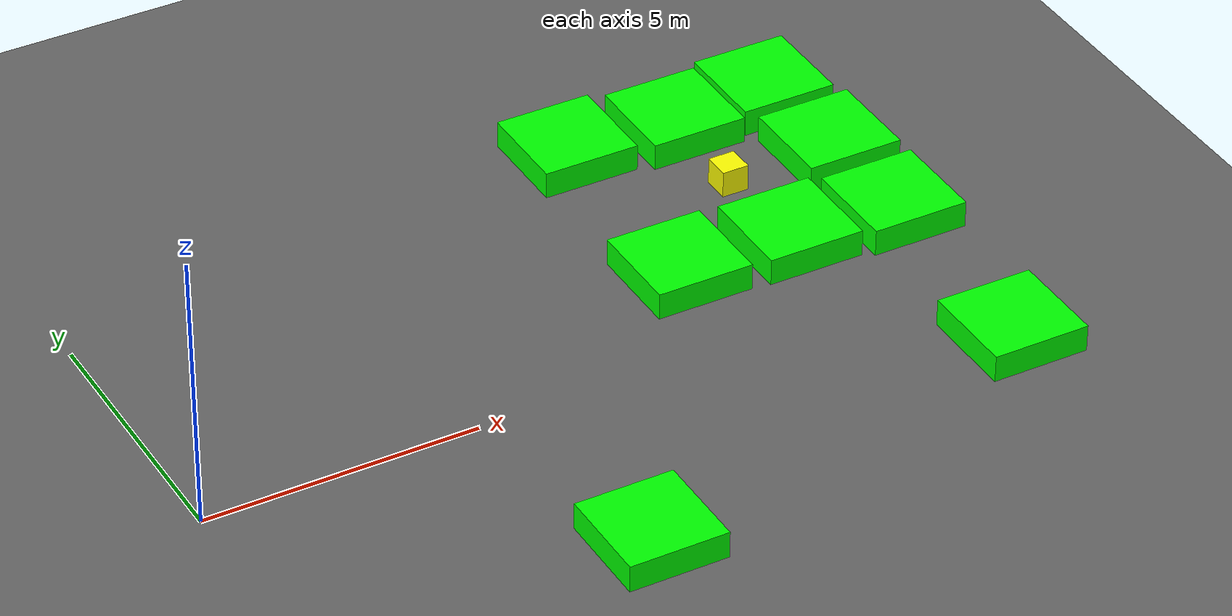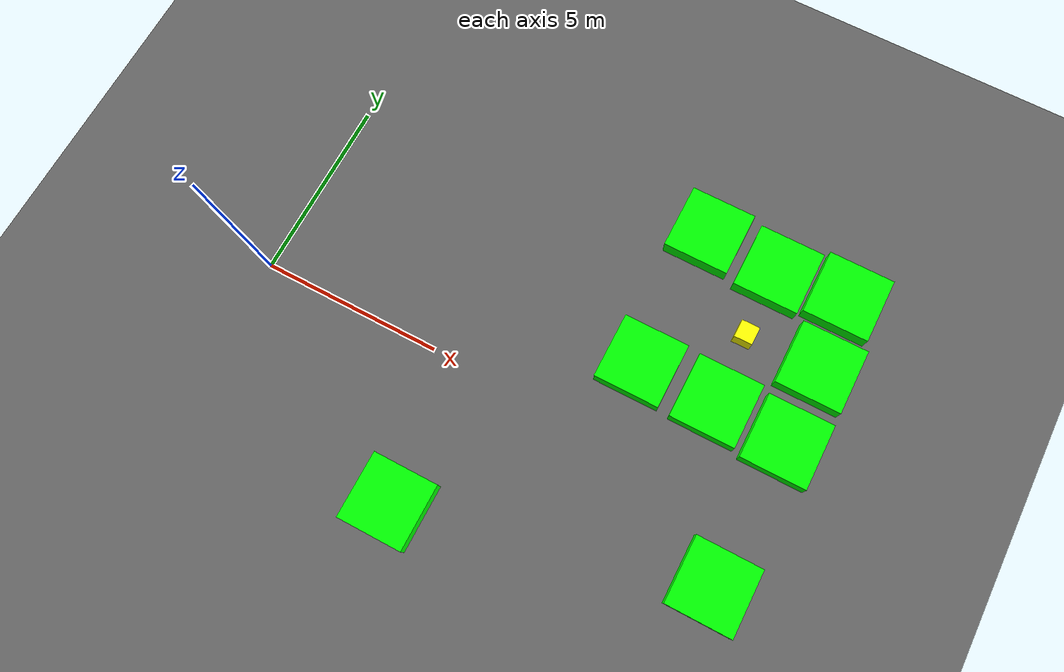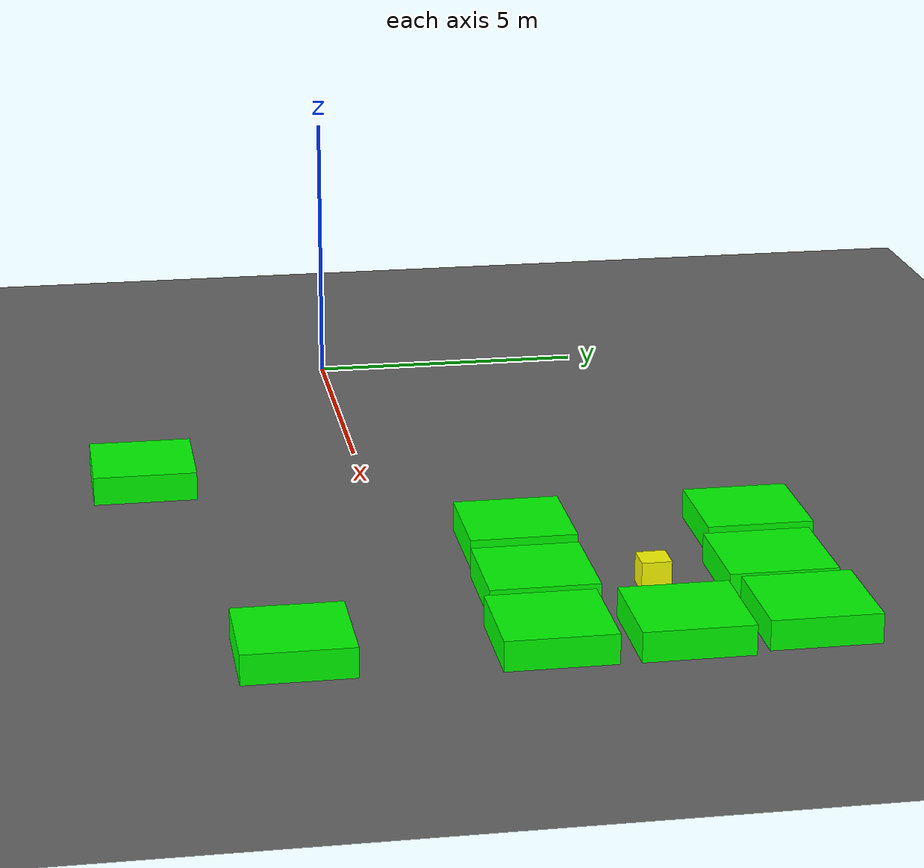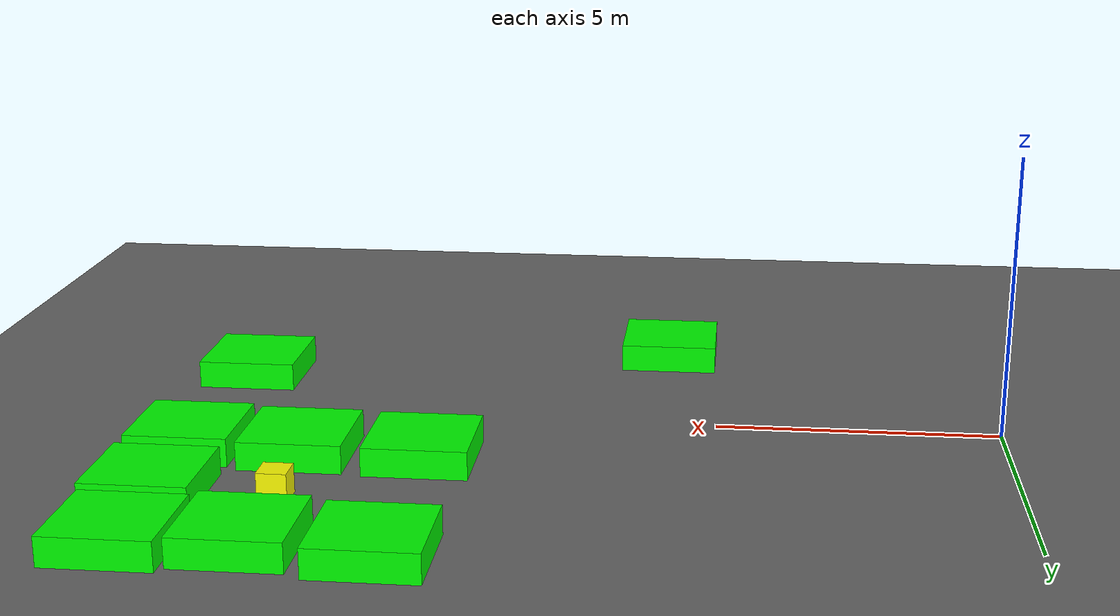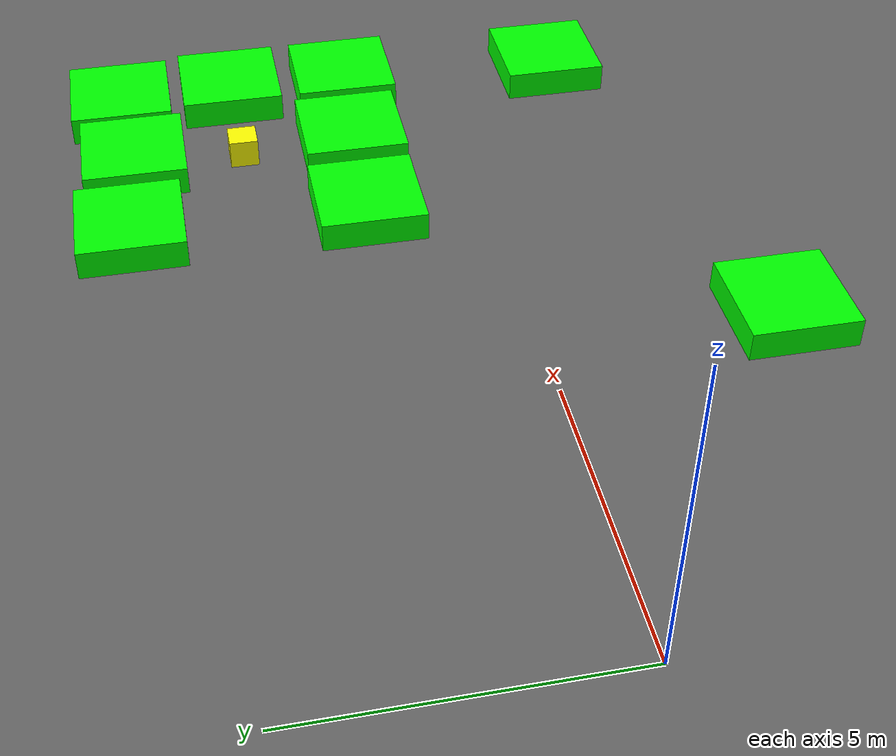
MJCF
<mujoco model="lvl5_deadend_obs10_dmid_depth2_seed41">
    <compiler angle="degree" coordinate="local" inertiafromgeom="true"/>
    <option integrator="RK4" timestep="0.01"/>

    <asset>
        <texture builtin="gradient" height="100" rgb1="0.6 0.8 1" rgb2="0 0 0" type="skybox" width="100"/>
        <texture name="floor_texture" type="2d" builtin="checker" width="100" height="100" rgb1="0 0 0" rgb2="0.8 0.8 0.8"/>
        <material name="MatPlane" reflectance="0.5" shininess="1" specular="1" texrepeat="10 10" texture="floor_texture"/>
    </asset>

    <!-- Excluding the contact between the agent and the goal, and the agent and the floor -->
    <contact>
        <exclude body1="agent" body2="goal"/>
        <exclude body1 = "agent" body2 = "floor"/>
    </contact>

    <extension>
        <plugin plugin = "mujoco.pid">
            <instance name = "pid1">
                <config key="kp" value="2"/>
                <config key="ki" value="0"/>
                <config key="kd" value="55"/>
            </instance>
        </plugin>
    </extension>

    <worldbody>
        <light cutoff="100" diffuse="1 1 1" dir="-0 0 -1.3" directional="true" exponent="1" pos="0 0 1.3" specular=".1 .1 .1"/>
        <body name="floor" pos="0 0 0">
            <geom name="floor_geom" type="plane" size="20 20 0.1" material="MatPlane"/>
        </body>

                <body name="goal" pos="0.0000 0.0000 0">
            <geom name="goal_geom" type="plane" size="0.5 0.5 1" pos="0 0 0" rgba="1 0 0 1"/>
        </body>

                <body name="agent" pos="12.0000 4.0000 0.250">
            <joint name="j1" type="slide" axis ="1 0 0 "/>
            <joint name="j2" type="slide" axis ="0 1 0 "/>
            <geom name="agent_geom" type="box" size="0.25 0.25 0.250" rgba="1 1 0 1"/>
        </body>

        <body name="obstacle1" pos="9.9672 6.0921 0.250">  <geom name="obstacle1_geom" type="box" size="0.9000 0.9000 0.250" rgba="0 1 0 1"/></body>
        <body name="obstacle2" pos="12.0323 5.9359 0.250">  <geom name="obstacle2_geom" type="box" size="0.9000 0.9000 0.250" rgba="0 1 0 1"/></body>
        <body name="obstacle3" pos="13.9332 6.0887 0.250">  <geom name="obstacle3_geom" type="box" size="0.9000 0.9000 0.250" rgba="0 1 0 1"/></body>
        <body name="obstacle4" pos="14.0599 4.0479 0.250">  <geom name="obstacle4_geom" type="box" size="0.9000 0.9000 0.250" rgba="0 1 0 1"/></body>
        <body name="obstacle5" pos="9.9357 2.0910 0.250">  <geom name="obstacle5_geom" type="box" size="0.9000 0.9000 0.250" rgba="0 1 0 1"/></body>
        <body name="obstacle6" pos="12.0688 2.0375 0.250">  <geom name="obstacle6_geom" type="box" size="0.9000 0.9000 0.250" rgba="0 1 0 1"/></body>
        <body name="obstacle7" pos="14.0567 1.9124 0.250">  <geom name="obstacle7_geom" type="box" size="0.9000 0.9000 0.250" rgba="0 1 0 1"/></body>
        <body name="obstacle8" pos="13.9211 -2.0605 0.250">  <geom name="obstacle8_geom" type="box" size="0.9000 0.9000 0.250" rgba="0 1 0 1"/></body>
        <body name="obstacle9" pos="6.0052 -3.9055 0.250">  <geom name="obstacle9_geom" type="box" size="0.9000 0.9000 0.250" rgba="0 1 0 1"/></body>

    </worldbody>

    <sensor>
<!-- SENSORS -->

        <distance name="dist1" geom1="agent_geom" geom2="obstacle1_geom" cutoff="1.5"/>
        <distance name="dist2" geom1="agent_geom" geom2="obstacle2_geom" cutoff="1.5"/>
        <distance name="dist3" geom1="agent_geom" geom2="obstacle3_geom" cutoff="1.5"/>
        <distance name="dist4" geom1="agent_geom" geom2="obstacle4_geom" cutoff="1.5"/>
        <distance name="dist5" geom1="agent_geom" geom2="obstacle5_geom" cutoff="1.5"/>
        <distance name="dist6" geom1="agent_geom" geom2="obstacle6_geom" cutoff="1.5"/>
        <distance name="dist7" geom1="agent_geom" geom2="obstacle7_geom" cutoff="1.5"/>
        <distance name="dist8" geom1="agent_geom" geom2="obstacle8_geom" cutoff="1.5"/>
        <distance name="dist9" geom1="agent_geom" geom2="obstacle9_geom" cutoff="1.5"/>
</sensor>

    <actuator>
        <plugin joint="j1" plugin="mujoco.pid" instance="pid1" />
        <plugin joint="j2" plugin="mujoco.pid" instance="pid1"/>
    </actuator>
</mujoco>
